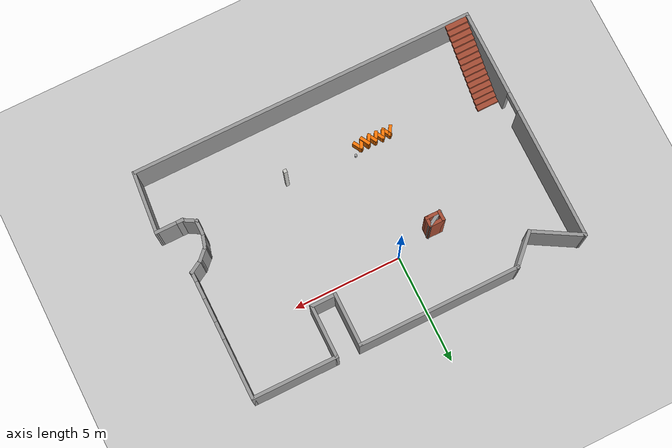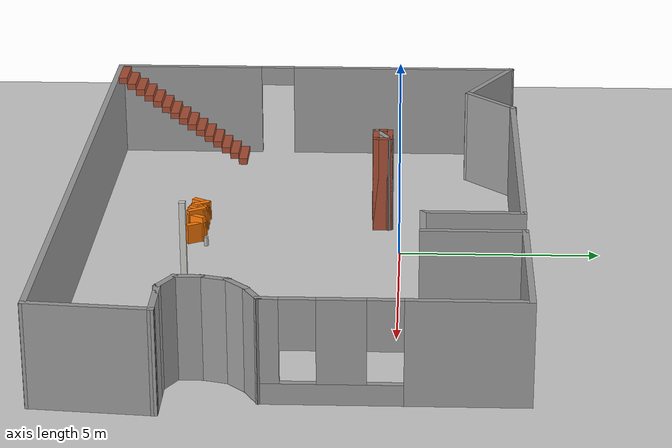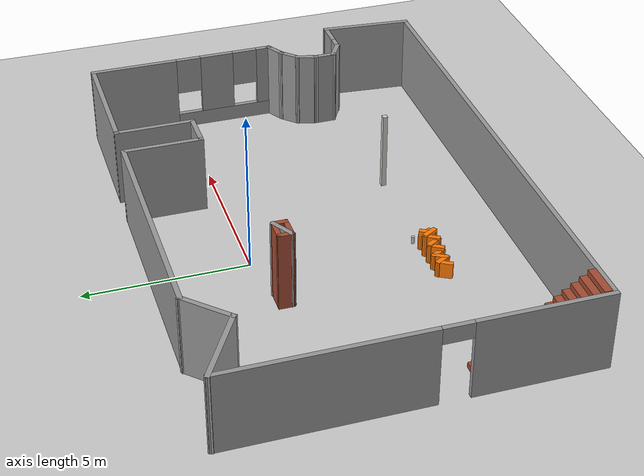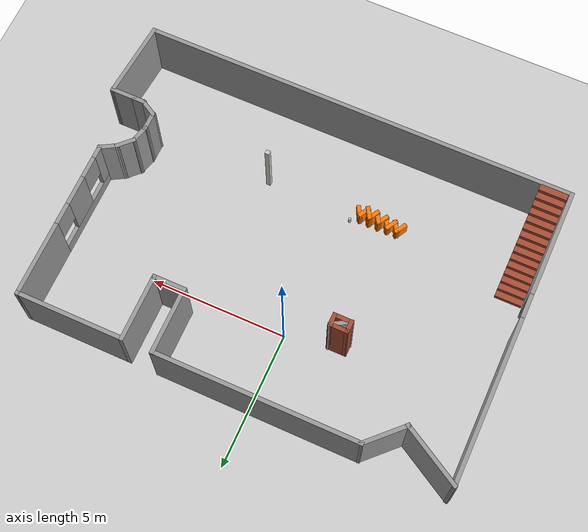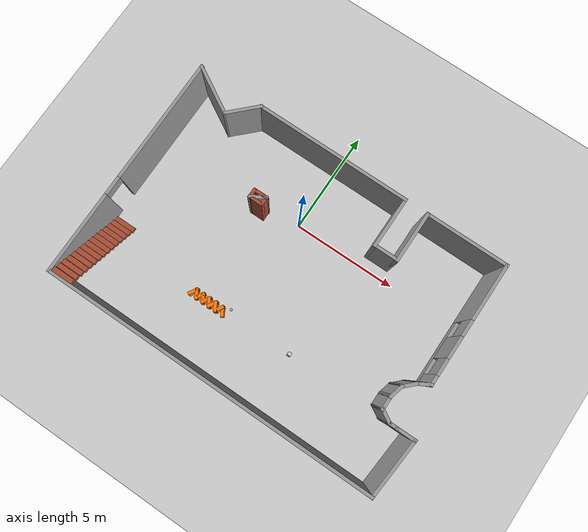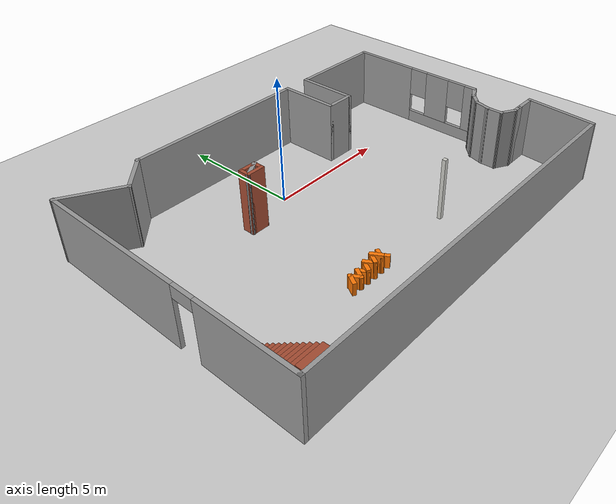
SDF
<sdf version="1.6">
 <world name="default">
  <model name="ground_plane">
   <static>1</static>
   <link name="link">
    <collision name="collision">
     <geometry><plane><normal>0 0 1</normal><size>100 100</size></plane></geometry>
     <surface><friction><ode><mu>100</mu><mu2>50</mu2></ode></friction></surface>
    </collision>
    <visual name="visual">
     <cast_shadows>0</cast_shadows>
     <geometry><plane><normal>0 0 1</normal><size>100 100</size></plane></geometry>
     <material>
      <script><uri>file://media/materials/scripts/gazebo.material</uri><name>Gazebo/Grey</name></script>
     </material>
    </visual>
   </link>
  </model>
  <model name="industria_basica">
   <pose>0.834406 -2.44932 0 0 -0 0</pose>
   <link name="Stairs_0">
    <visual name="Stairs_0_Visual_0">
     <pose>-7.4348 -1.99326 0.083333 0 -0 0</pose>
     <geometry><box><size>1 0.233333 0.166667</size></box></geometry>
     <material>
      <script><uri>file://media/materials/scripts/gazebo.material</uri><name>Gazebo/Bricks</name></script>
      <ambient>1 1 1 1</ambient>
     </material>
    </visual>
    <collision name="Stairs_0_Collision_0">
     <geometry><box><size>1 0.233333 0.166667</size></box></geometry>
     <pose>-7.4348 -1.99326 0.083333 0 -0 0</pose>
    </collision>
    <visual name="Stairs_0_Visual_1">
     <pose>-7.4348 -2.22659 0.25 0 -0 0</pose>
     <geometry><box><size>1 0.233333 0.166667</size></box></geometry>
     <material>
      <script><uri>file://media/materials/scripts/gazebo.material</uri><name>Gazebo/Bricks</name></script>
      <ambient>1 1 1 1</ambient>
     </material>
    </visual>
    <collision name="Stairs_0_Collision_1">
     <geometry><box><size>1 0.233333 0.166667</size></box></geometry>
     <pose>-7.4348 -2.22659 0.25 0 -0 0</pose>
    </collision>
    <visual name="Stairs_0_Visual_2">
     <pose>-7.4348 -2.45992 0.416667 0 -0 0</pose>
     <geometry><box><size>1 0.233333 0.166667</size></box></geometry>
     <material>
      <script><uri>file://media/materials/scripts/gazebo.material</uri><name>Gazebo/Bricks</name></script>
      <ambient>1 1 1 1</ambient>
     </material>
    </visual>
    <collision name="Stairs_0_Collision_2">
     <geometry><box><size>1 0.233333 0.166667</size></box></geometry>
     <pose>-7.4348 -2.45992 0.416667 0 -0 0</pose>
    </collision>
    <visual name="Stairs_0_Visual_3">
     <pose>-7.4348 -2.69326 0.583333 0 -0 0</pose>
     <geometry><box><size>1 0.233333 0.166667</size></box></geometry>
     <material>
      <script><uri>file://media/materials/scripts/gazebo.material</uri><name>Gazebo/Bricks</name></script>
      <ambient>1 1 1 1</ambient>
     </material>
    </visual>
    <collision name="Stairs_0_Collision_3">
     <geometry><box><size>1 0.233333 0.166667</size></box></geometry>
     <pose>-7.4348 -2.69326 0.583333 0 -0 0</pose>
    </collision>
    <visual name="Stairs_0_Visual_4">
     <pose>-7.4348 -2.92659 0.75 0 -0 0</pose>
     <geometry><box><size>1 0.233333 0.166667</size></box></geometry>
     <material>
      <script><uri>file://media/materials/scripts/gazebo.material</uri><name>Gazebo/Bricks</name></script>
      <ambient>1 1 1 1</ambient>
     </material>
    </visual>
    <collision name="Stairs_0_Collision_4">
     <geometry><box><size>1 0.233333 0.166667</size></box></geometry>
     <pose>-7.4348 -2.92659 0.75 0 -0 0</pose>
    </collision>
    <visual name="Stairs_0_Visual_5">
     <pose>-7.4348 -3.15992 0.916667 0 -0 0</pose>
     <geometry><box><size>1 0.233333 0.166667</size></box></geometry>
     <material>
      <script><uri>file://media/materials/scripts/gazebo.material</uri><name>Gazebo/Bricks</name></script>
      <ambient>1 1 1 1</ambient>
     </material>
    </visual>
    <collision name="Stairs_0_Collision_5">
     <geometry><box><size>1 0.233333 0.166667</size></box></geometry>
     <pose>-7.4348 -3.15992 0.916667 0 -0 0</pose>
    </collision>
    <visual name="Stairs_0_Visual_6">
     <pose>-7.4348 -3.39326 1.08333 0 -0 0</pose>
     <geometry><box><size>1 0.233333 0.166667</size></box></geometry>
     <material>
      <script><uri>file://media/materials/scripts/gazebo.material</uri><name>Gazebo/Bricks</name></script>
      <ambient>1 1 1 1</ambient>
     </material>
    </visual>
    <collision name="Stairs_0_Collision_6">
     <geometry><box><size>1 0.233333 0.166667</size></box></geometry>
     <pose>-7.4348 -3.39326 1.08333 0 -0 0</pose>
    </collision>
    <visual name="Stairs_0_Visual_7">
     <pose>-7.4348 -3.62659 1.25 0 -0 0</pose>
     <geometry><box><size>1 0.233333 0.166667</size></box></geometry>
     <material>
      <script><uri>file://media/materials/scripts/gazebo.material</uri><name>Gazebo/Bricks</name></script>
      <ambient>1 1 1 1</ambient>
     </material>
    </visual>
    <collision name="Stairs_0_Collision_7">
     <geometry><box><size>1 0.233333 0.166667</size></box></geometry>
     <pose>-7.4348 -3.62659 1.25 0 -0 0</pose>
    </collision>
    <visual name="Stairs_0_Visual_8">
     <pose>-7.4348 -3.85992 1.41667 0 -0 0</pose>
     <geometry><box><size>1 0.233333 0.166667</size></box></geometry>
     <material>
      <script><uri>file://media/materials/scripts/gazebo.material</uri><name>Gazebo/Bricks</name></script>
      <ambient>1 1 1 1</ambient>
     </material>
    </visual>
    <collision name="Stairs_0_Collision_8">
     <geometry><box><size>1 0.233333 0.166667</size></box></geometry>
     <pose>-7.4348 -3.85992 1.41667 0 -0 0</pose>
    </collision>
    <visual name="Stairs_0_Visual_9">
     <pose>-7.4348 -4.09326 1.58333 0 -0 0</pose>
     <geometry><box><size>1 0.233333 0.166667</size></box></geometry>
     <material>
      <script><uri>file://media/materials/scripts/gazebo.material</uri><name>Gazebo/Bricks</name></script>
      <ambient>1 1 1 1</ambient>
     </material>
    </visual>
    <collision name="Stairs_0_Collision_9">
     <geometry><box><size>1 0.233333 0.166667</size></box></geometry>
     <pose>-7.4348 -4.09326 1.58333 0 -0 0</pose>
    </collision>
    <visual name="Stairs_0_Visual_10">
     <pose>-7.4348 -4.32659 1.75 0 -0 0</pose>
     <geometry><box><size>1 0.233333 0.166667</size></box></geometry>
     <material>
      <script><uri>file://media/materials/scripts/gazebo.material</uri><name>Gazebo/Bricks</name></script>
      <ambient>1 1 1 1</ambient>
     </material>
    </visual>
    <collision name="Stairs_0_Collision_10">
     <geometry><box><size>1 0.233333 0.166667</size></box></geometry>
     <pose>-7.4348 -4.32659 1.75 0 -0 0</pose>
    </collision>
    <visual name="Stairs_0_Visual_11">
     <pose>-7.4348 -4.55992 1.91667 0 -0 0</pose>
     <geometry><box><size>1 0.233333 0.166667</size></box></geometry>
     <material>
      <script><uri>file://media/materials/scripts/gazebo.material</uri><name>Gazebo/Bricks</name></script>
      <ambient>1 1 1 1</ambient>
     </material>
    </visual>
    <collision name="Stairs_0_Collision_11">
     <geometry><box><size>1 0.233333 0.166667</size></box></geometry>
     <pose>-7.4348 -4.55992 1.91667 0 -0 0</pose>
    </collision>
    <visual name="Stairs_0_Visual_12">
     <pose>-7.4348 -4.79326 2.08333 0 -0 0</pose>
     <geometry><box><size>1 0.233333 0.166667</size></box></geometry>
     <material>
      <script><uri>file://media/materials/scripts/gazebo.material</uri><name>Gazebo/Bricks</name></script>
      <ambient>1 1 1 1</ambient>
     </material>
    </visual>
    <collision name="Stairs_0_Collision_12">
     <geometry><box><size>1 0.233333 0.166667</size></box></geometry>
     <pose>-7.4348 -4.79326 2.08333 0 -0 0</pose>
    </collision>
    <visual name="Stairs_0_Visual_13">
     <pose>-7.4348 -5.02659 2.25 0 -0 0</pose>
     <geometry><box><size>1 0.233333 0.166667</size></box></geometry>
     <material>
      <script><uri>file://media/materials/scripts/gazebo.material</uri><name>Gazebo/Bricks</name></script>
      <ambient>1 1 1 1</ambient>
     </material>
    </visual>
    <collision name="Stairs_0_Collision_13">
     <geometry><box><size>1 0.233333 0.166667</size></box></geometry>
     <pose>-7.4348 -5.02659 2.25 0 -0 0</pose>
    </collision>
    <visual name="Stairs_0_Visual_14">
     <pose>-7.4348 -5.25992 2.41667 0 -0 0</pose>
     <geometry><box><size>1 0.233333 0.166667</size></box></geometry>
     <material>
      <script><uri>file://media/materials/scripts/gazebo.material</uri><name>Gazebo/Bricks</name></script>
      <ambient>1 1 1 1</ambient>
     </material>
    </visual>
    <collision name="Stairs_0_Collision_14">
     <geometry><box><size>1 0.233333 0.166667</size></box></geometry>
     <pose>-7.4348 -5.25992 2.41667 0 -0 0</pose>
    </collision>
   </link>
   <link name="Wall_10">
    <collision name="Wall_10_Collision">
     <geometry><box><size>7.5 0.15 2.5</size></box></geometry>
     <pose>0 0 1.25 0 -0 0</pose>
    </collision>
    <visual name="Wall_10_Visual">
     <pose>0 0 1.25 0 -0 0</pose>
     <geometry><box><size>7.5 0.15 2.5</size></box></geometry>
     <material>
      <script><uri>file://media/materials/scripts/gazebo.material</uri><name>Gazebo/Grey</name></script>
      <ambient>1 1 1 1</ambient>
     </material>
    </visual>
    <pose>-1.19131 5.37072 0 0 -0 0</pose>
   </link>
   <link name="Wall_11">
    <collision name="Wall_11_Collision">
     <geometry><box><size>2.5 0.15 2.5</size></box></geometry>
     <pose>0 0 1.25 0 -0 0</pose>
    </collision>
    <visual name="Wall_11_Visual">
     <pose>0 0 1.25 0 -0 0</pose>
     <geometry><box><size>2.5 0.15 2.5</size></box></geometry>
     <material>
      <script><uri>file://media/materials/scripts/gazebo.material</uri><name>Gazebo/Grey</name></script>
      <ambient>1 1 1 1</ambient>
     </material>
    </visual>
    <pose>2.48369 4.19572 0 0 0 -1.5708</pose>
   </link>
   <link name="Wall_12">
    <collision name="Wall_12_Collision">
     <geometry><box><size>1.25 0.15 2.5</size></box></geometry>
     <pose>0 0 1.25 0 -0 0</pose>
    </collision>
    <visual name="Wall_12_Visual">
     <pose>0 0 1.25 0 -0 0</pose>
     <geometry><box><size>1.25 0.15 2.5</size></box></geometry>
     <material>
      <script><uri>file://media/materials/scripts/gazebo.material</uri><name>Gazebo/Grey</name></script>
      <ambient>1 1 1 1</ambient>
     </material>
    </visual>
    <pose>3.03369 3.02072 0 0 -0 0</pose>
   </link>
   <link name="Wall_13">
    <collision name="Wall_13_Collision">
     <geometry><box><size>2.5 0.15 2.5</size></box></geometry>
     <pose>0 0 1.25 0 -0 0</pose>
    </collision>
    <visual name="Wall_13_Visual">
     <pose>0 0 1.25 0 -0 0</pose>
     <geometry><box><size>2.5 0.15 2.5</size></box></geometry>
     <material>
      <script><uri>file://media/materials/scripts/gazebo.material</uri><name>Gazebo/Grey</name></script>
      <ambient>1 1 1 1</ambient>
     </material>
    </visual>
    <pose>3.58369 4.19572 0 0 -0 1.5708</pose>
   </link>
   <link name="Wall_14">
    <collision name="Wall_14_Collision">
     <geometry><box><size>4 0.15 2.5</size></box></geometry>
     <pose>0 0 1.25 0 -0 0</pose>
    </collision>
    <visual name="Wall_14_Visual">
     <pose>0 0 1.25 0 -0 0</pose>
     <geometry><box><size>4 0.15 2.5</size></box></geometry>
     <material>
      <script><uri>file://media/materials/scripts/gazebo.material</uri><name>Gazebo/Grey</name></script>
      <ambient>1 1 1 1</ambient>
     </material>
    </visual>
    <pose>5.50869 5.37072 0 0 -0 0</pose>
   </link>
   <link name="Wall_15">
    <pose>7.43369 2.44572 0 0 0 -1.5708</pose>
    <visual name="Wall_15_Visual_0">
     <pose>-1.60274 0 1.25 0 -0 0</pose>
     <geometry><box><size>2.79452 0.15 2.5</size></box></geometry>
     <material>
      <script><uri>file://media/materials/scripts/gazebo.material</uri><name>Gazebo/Grey</name></script>
      <ambient>1 1 1 1</ambient>
     </material>
    </visual>
    <collision name="Wall_15_Collision_0">
     <geometry><box><size>2.79452 0.15 2.5</size></box></geometry>
     <pose>-1.60274 0 1.25 0 -0 0</pose>
    </collision>
    <visual name="Wall_15_Visual_1">
     <pose>1.39726 0 0.25 0 -0 0</pose>
     <geometry><box><size>3.20548 0.15 0.5</size></box></geometry>
     <material>
      <script><uri>file://media/materials/scripts/gazebo.material</uri><name>Gazebo/Grey</name></script>
      <ambient>1 1 1 1</ambient>
     </material>
    </visual>
    <collision name="Wall_15_Collision_1">
     <geometry><box><size>3.20548 0.15 0.5</size></box></geometry>
     <pose>1.39726 0 0.25 0 -0 0</pose>
    </collision>
    <visual name="Wall_15_Visual_2">
     <pose>1.13916 0 1.5 0 -0 0</pose>
     <geometry><box><size>1.08927 0.15 2</size></box></geometry>
     <material>
      <script><uri>file://media/materials/scripts/gazebo.material</uri><name>Gazebo/Grey</name></script>
      <ambient>1 1 1 1</ambient>
     </material>
    </visual>
    <collision name="Wall_15_Collision_2">
     <geometry><box><size>1.08927 0.15 2</size></box></geometry>
     <pose>1.13916 0 1.5 0 -0 0</pose>
    </collision>
    <visual name="Wall_15_Visual_3">
     <pose>2.7419 0 1.5 0 -0 0</pose>
     <geometry><box><size>0.516207 0.15 2</size></box></geometry>
     <material>
      <script><uri>file://media/materials/scripts/gazebo.material</uri><name>Gazebo/Grey</name></script>
      <ambient>1 1 1 1</ambient>
     </material>
    </visual>
    <collision name="Wall_15_Collision_3">
     <geometry><box><size>0.516207 0.15 2</size></box></geometry>
     <pose>2.7419 0 1.5 0 -0 0</pose>
    </collision>
    <visual name="Wall_15_Visual_4">
     <pose>0.194521 0 1.9 0 -0 0</pose>
     <geometry><box><size>0.8 0.15 1.2</size></box></geometry>
     <material>
      <script><uri>file://media/materials/scripts/gazebo.material</uri><name>Gazebo/Grey</name></script>
      <ambient>1 1 1 1</ambient>
     </material>
    </visual>
    <collision name="Wall_15_Collision_4">
     <geometry><box><size>0.8 0.15 1.2</size></box></geometry>
     <pose>0.194521 0 1.9 0 -0 0</pose>
    </collision>
    <visual name="Wall_15_Visual_5">
     <pose>2.08379 0 1.9 0 -0 0</pose>
     <geometry><box><size>0.8 0.15 1.2</size></box></geometry>
     <material>
      <script><uri>file://media/materials/scripts/gazebo.material</uri><name>Gazebo/Grey</name></script>
      <ambient>1 1 1 1</ambient>
     </material>
    </visual>
    <collision name="Wall_15_Collision_5">
     <geometry><box><size>0.8 0.15 1.2</size></box></geometry>
     <pose>2.08379 0 1.9 0 -0 0</pose>
    </collision>
   </link>
   <link name="Wall_16">
    <collision name="Wall_16_Collision">
     <geometry><box><size>0.75 0.15 2.5</size></box></geometry>
     <pose>0 0 1.25 0 -0 0</pose>
    </collision>
    <visual name="Wall_16_Visual">
     <pose>0 0 1.25 0 -0 0</pose>
     <geometry><box><size>0.75 0.15 2.5</size></box></geometry>
     <material>
      <script><uri>file://media/materials/scripts/gazebo.material</uri><name>Gazebo/Grey</name></script>
      <ambient>1 1 1 1</ambient>
     </material>
    </visual>
    <pose>7.17388 -0.629277 0 0 0 -2.61799</pose>
   </link>
   <link name="Wall_17">
    <collision name="Wall_17_Collision">
     <geometry><box><size>0.75 0.15 2.5</size></box></geometry>
     <pose>0 0 1.25 0 -0 0</pose>
    </collision>
    <visual name="Wall_17_Visual">
     <pose>0 0 1.25 0 -0 0</pose>
     <geometry><box><size>0.75 0.15 2.5</size></box></geometry>
     <material>
      <script><uri>file://media/materials/scripts/gazebo.material</uri><name>Gazebo/Grey</name></script>
      <ambient>1 1 1 1</ambient>
     </material>
    </visual>
    <pose>6.70194 -0.991409 0 0 0 -2.35619</pose>
   </link>
   <link name="Wall_18">
    <collision name="Wall_18_Collision">
     <geometry><box><size>0.75 0.15 2.5</size></box></geometry>
     <pose>0 0 1.25 0 -0 0</pose>
    </collision>
    <visual name="Wall_18_Visual">
     <pose>0 0 1.25 0 -0 0</pose>
     <geometry><box><size>0.75 0.15 2.5</size></box></geometry>
     <material>
      <script><uri>file://media/materials/scripts/gazebo.material</uri><name>Gazebo/Grey</name></script>
      <ambient>1 1 1 1</ambient>
     </material>
    </visual>
    <pose>6.41217 -1.49332 0 0 0 -1.8326</pose>
   </link>
   <link name="Wall_19">
    <collision name="Wall_19_Collision">
     <geometry><box><size>0.75 0.15 2.5</size></box></geometry>
     <pose>0 0 1.25 0 -0 0</pose>
    </collision>
    <visual name="Wall_19_Visual">
     <pose>0 0 1.25 0 -0 0</pose>
     <geometry><box><size>0.75 0.15 2.5</size></box></geometry>
     <material>
      <script><uri>file://media/materials/scripts/gazebo.material</uri><name>Gazebo/Grey</name></script>
      <ambient>1 1 1 1</ambient>
     </material>
    </visual>
    <pose>6.33452 -2.0831 0 0 0 -1.5708</pose>
   </link>
   <link name="Wall_20">
    <collision name="Wall_20_Collision">
     <geometry><box><size>0.75 0.15 2.5</size></box></geometry>
     <pose>0 0 1.25 0 -0 0</pose>
    </collision>
    <visual name="Wall_20_Visual">
     <pose>0 0 1.25 0 -0 0</pose>
     <geometry><box><size>0.75 0.15 2.5</size></box></geometry>
     <material>
      <script><uri>file://media/materials/scripts/gazebo.material</uri><name>Gazebo/Grey</name></script>
      <ambient>1 1 1 1</ambient>
     </material>
    </visual>
    <pose>6.59433 -2.5331 0 0 0 -0.523599</pose>
   </link>
   <link name="Wall_21">
    <collision name="Wall_21_Collision">
     <geometry><box><size>0.5 0.15 2.5</size></box></geometry>
     <pose>0 0 1.25 0 -0 0</pose>
    </collision>
    <visual name="Wall_21_Visual">
     <pose>0 0 1.25 0 -0 0</pose>
     <geometry><box><size>0.5 0.15 2.5</size></box></geometry>
     <material>
      <script><uri>file://media/materials/scripts/gazebo.material</uri><name>Gazebo/Grey</name></script>
      <ambient>1 1 1 1</ambient>
     </material>
    </visual>
    <pose>7.02914 -2.6831 0 0 -0 0</pose>
   </link>
   <link name="Wall_22">
    <collision name="Wall_22_Collision">
     <geometry><box><size>1 0.15 2.5</size></box></geometry>
     <pose>0 0 1.25 0 -0 0</pose>
    </collision>
    <visual name="Wall_22_Visual">
     <pose>0 0 1.25 0 -0 0</pose>
     <geometry><box><size>1 0.15 2.5</size></box></geometry>
     <material>
      <script><uri>file://media/materials/scripts/gazebo.material</uri><name>Gazebo/Grey</name></script>
      <ambient>1 1 1 1</ambient>
     </material>
    </visual>
    <pose>7.62913 -2.6831 0 0 -0 0</pose>
   </link>
   <link name="Wall_23">
    <collision name="Wall_23_Collision">
     <geometry><box><size>2.91273 0.15 2.5</size></box></geometry>
     <pose>0 0 1.25 0 -0 0</pose>
    </collision>
    <visual name="Wall_23_Visual">
     <pose>0 0 1.25 0 -0 0</pose>
     <geometry><box><size>2.91273 0.15 2.5</size></box></geometry>
     <material>
      <script><uri>file://media/materials/scripts/gazebo.material</uri><name>Gazebo/Grey</name></script>
      <ambient>1 1 1 1</ambient>
     </material>
    </visual>
    <pose>7.93565 -4.05937 0 0 0 -1.65668</pose>
   </link>
   <link name="Wall_4">
    <pose>-8.03284 -0.010648 0 0 0 -1.5708</pose>
    <visual name="Wall_4_Visual_0">
     <pose>-2.45105 0 1.25 0 -0 0</pose>
     <geometry><box><size>6.09789 0.15 2.5</size></box></geometry>
     <material>
      <script><uri>file://media/materials/scripts/gazebo.material</uri><name>Gazebo/Grey</name></script>
      <ambient>1 1 1 1</ambient>
     </material>
    </visual>
    <collision name="Wall_4_Collision_0">
     <geometry><box><size>6.09789 0.15 2.5</size></box></geometry>
     <pose>-2.45105 0 1.25 0 -0 0</pose>
    </collision>
    <visual name="Wall_4_Visual_1">
     <pose>3.49895 0 1.25 0 -0 0</pose>
     <geometry><box><size>4.00211 0.15 2.5</size></box></geometry>
     <material>
      <script><uri>file://media/materials/scripts/gazebo.material</uri><name>Gazebo/Grey</name></script>
      <ambient>1 1 1 1</ambient>
     </material>
    </visual>
    <collision name="Wall_4_Collision_1">
     <geometry><box><size>4.00211 0.15 2.5</size></box></geometry>
     <pose>3.49895 0 1.25 0 -0 0</pose>
    </collision>
    <visual name="Wall_4_Visual_2">
     <pose>1.04789 0 2.25 0 -0 0</pose>
     <geometry><box><size>0.9 0.15 0.5</size></box></geometry>
     <material>
      <script><uri>file://media/materials/scripts/gazebo.material</uri><name>Gazebo/Grey</name></script>
      <ambient>1 1 1 1</ambient>
     </material>
    </visual>
    <collision name="Wall_4_Collision_2">
     <geometry><box><size>0.9 0.15 0.5</size></box></geometry>
     <pose>1.04789 0 2.25 0 -0 0</pose>
    </collision>
   </link>
   <link name="Wall_5">
    <collision name="Wall_5_Collision">
     <geometry><box><size>16 0.15 2.5</size></box></geometry>
     <pose>0 0 1.25 0 -0 0</pose>
    </collision>
    <visual name="Wall_5_Visual">
     <pose>0 0 1.25 0 -0 0</pose>
     <geometry><box><size>16 0.15 2.5</size></box></geometry>
     <material>
      <script><uri>file://media/materials/scripts/gazebo.material</uri><name>Gazebo/Grey</name></script>
      <ambient>1 1 1 1</ambient>
     </material>
    </visual>
    <pose>-0.10784 -5.43565 0 0 -0 0</pose>
   </link>
   <link name="Wall_8">
    <collision name="Wall_8_Collision">
     <geometry><box><size>2.5 0.15 2.5</size></box></geometry>
     <pose>0 0 1.25 0 -0 0</pose>
    </collision>
    <visual name="Wall_8_Visual">
     <pose>0 0 1.25 0 -0 0</pose>
     <geometry><box><size>2.5 0.15 2.5</size></box></geometry>
     <material>
      <script><uri>file://media/materials/scripts/gazebo.material</uri><name>Gazebo/Grey</name></script>
      <ambient>1 1 1 1</ambient>
     </material>
    </visual>
    <pose>-7.01526 4.82685 0 0 0 -0.523599</pose>
   </link>
   <link name="Wall_9">
    <collision name="Wall_9_Collision">
     <geometry><box><size>1.75 0.15 2.5</size></box></geometry>
     <pose>0 0 1.25 0 -0 0</pose>
    </collision>
    <visual name="Wall_9_Visual">
     <pose>0 0 1.25 0 -0 0</pose>
     <geometry><box><size>1.75 0.15 2.5</size></box></geometry>
     <material>
      <script><uri>file://media/materials/scripts/gazebo.material</uri><name>Gazebo/Grey</name></script>
      <ambient>1 1 1 1</ambient>
     </material>
    </visual>
    <pose>-5.43199 4.80504 0 0 -0 0.785398</pose>
   </link>
   <static>1</static>
  </model>
  <model name="industria_basica2">
   <pose>0.305179 -2.81957 0 0 -0 0</pose>
   <link name="Wall_1">
    <collision name="Wall_1_Collision">
     <geometry><box><size>0.16 0.15 2.5</size></box></geometry>
     <pose>0 0 1.25 0 -0 0</pose>
    </collision>
    <visual name="Wall_1_Visual">
     <pose>0 0 1.25 0 -0 0</pose>
     <geometry><box><size>0.16 0.15 2.5</size></box></geometry>
     <material>
      <script><uri>file://media/materials/scripts/gazebo.material</uri><name>Gazebo/CeilingTiled</name></script>
      <ambient>1 1 1 1</ambient>
     </material>
    </visual>
    <pose>2.58924 -2.29315 0 0 -0 0</pose>
   </link>
   <link name="Wall_10">
    <collision name="Wall_10_Collision">
     <geometry><box><size>0.844622 0.15 2.5</size></box></geometry>
     <pose>0 0 1.25 0 -0 0</pose>
    </collision>
    <visual name="Wall_10_Visual">
     <pose>0 0 1.25 0 -0 0</pose>
     <geometry><box><size>0.844622 0.15 2.5</size></box></geometry>
     <material>
      <script><uri>file://media/materials/scripts/gazebo.material</uri><name>Gazebo/Grey</name></script>
      <ambient>1 1 1 1</ambient>
     </material>
    </visual>
    <pose>-2.16698 2.35707 0 0 0 -2.61352</pose>
   </link>
   <link name="Wall_21">
    <collision name="Wall_21_Collision">
     <geometry><box><size>0.5 0.15 0.5</size></box></geometry>
     <pose>0 0 0.25 0 -0 0</pose>
    </collision>
    <visual name="Wall_21_Visual">
     <pose>0 0 0.25 0 -0 0</pose>
     <geometry><box><size>0.5 0.15 0.5</size></box></geometry>
     <material>
      <script><uri>file://media/materials/scripts/gazebo.material</uri><name>Gazebo/Grey</name></script>
      <ambient>0.996078 0.47451 0.0196078 1</ambient>
     </material>
    </visual>
    <pose>-2.47926 -2.38065 0 0 -0 1.04704</pose>
   </link>
   <link name="Wall_22">
    <collision name="Wall_22_Collision">
     <geometry><box><size>0.5 0.15 0.5</size></box></geometry>
     <pose>0 0 0.25 0 -0 0</pose>
    </collision>
    <visual name="Wall_22_Visual">
     <pose>0 0 0.25 0 -0 0</pose>
     <geometry><box><size>0.5 0.15 0.5</size></box></geometry>
     <material>
      <script><uri>file://media/materials/scripts/gazebo.material</uri><name>Gazebo/Grey</name></script>
      <ambient>0.996078 0.47451 0.0196078 1</ambient>
     </material>
    </visual>
    <pose>-2.30426 -2.38065 0 0 0 -1.04704</pose>
   </link>
   <link name="Wall_23">
    <collision name="Wall_23_Collision">
     <geometry><box><size>0.5 0.15 0.5</size></box></geometry>
     <pose>0 0 0.25 0 -0 0</pose>
    </collision>
    <visual name="Wall_23_Visual">
     <pose>0 0 0.25 0 -0 0</pose>
     <geometry><box><size>0.5 0.15 0.5</size></box></geometry>
     <material>
      <script><uri>file://media/materials/scripts/gazebo.material</uri><name>Gazebo/Grey</name></script>
      <ambient>0.996078 0.47451 0.0196078 1</ambient>
     </material>
    </visual>
    <pose>-2.12926 -2.38065 0 0 -0 1.04704</pose>
   </link>
   <link name="Wall_24">
    <collision name="Wall_24_Collision">
     <geometry><box><size>0.5 0.15 0.5</size></box></geometry>
     <pose>0 0 0.25 0 -0 0</pose>
    </collision>
    <visual name="Wall_24_Visual">
     <pose>0 0 0.25 0 -0 0</pose>
     <geometry><box><size>0.5 0.15 0.5</size></box></geometry>
     <material>
      <script><uri>file://media/materials/scripts/gazebo.material</uri><name>Gazebo/Grey</name></script>
      <ambient>0.996078 0.47451 0.0196078 1</ambient>
     </material>
    </visual>
    <pose>-1.95426 -2.38065 0 0 0 -1.04704</pose>
   </link>
   <link name="Wall_25">
    <collision name="Wall_25_Collision">
     <geometry><box><size>0.5 0.15 0.6</size></box></geometry>
     <pose>0 0 0.3 0 -0 0</pose>
    </collision>
    <visual name="Wall_25_Visual">
     <pose>0 0 0.3 0 -0 0</pose>
     <geometry><box><size>0.5 0.15 0.6</size></box></geometry>
     <material>
      <script><uri>file://media/materials/scripts/gazebo.material</uri><name>Gazebo/Grey</name></script>
      <ambient>0.996078 0.47451 0.0196078 1</ambient>
     </material>
    </visual>
    <pose>-1.77926 -2.38065 0 0 -0 1.04704</pose>
   </link>
   <link name="Wall_26">
    <collision name="Wall_26_Collision">
     <geometry><box><size>0.5 0.15 0.65</size></box></geometry>
     <pose>0 0 0.325 0 -0 0</pose>
    </collision>
    <visual name="Wall_26_Visual">
     <pose>0 0 0.325 0 -0 0</pose>
     <geometry><box><size>0.5 0.15 0.65</size></box></geometry>
     <material>
      <script><uri>file://media/materials/scripts/gazebo.material</uri><name>Gazebo/Grey</name></script>
      <ambient>0.996078 0.47451 0.0196078 1</ambient>
     </material>
    </visual>
    <pose>-1.60426 -2.38065 0 0 0 -1.04704</pose>
   </link>
   <link name="Wall_27">
    <collision name="Wall_27_Collision">
     <geometry><box><size>0.5 0.15 0.7</size></box></geometry>
     <pose>0 0 0.35 0 -0 0</pose>
    </collision>
    <visual name="Wall_27_Visual">
     <pose>0 0 0.35 0 -0 0</pose>
     <geometry><box><size>0.5 0.15 0.7</size></box></geometry>
     <material>
      <script><uri>file://media/materials/scripts/gazebo.material</uri><name>Gazebo/Grey</name></script>
      <ambient>0.996078 0.47451 0.0196078 1</ambient>
     </material>
    </visual>
    <pose>-1.42926 -2.38065 0 0 -0 1.04704</pose>
   </link>
   <link name="Wall_28">
    <collision name="Wall_28_Collision">
     <geometry><box><size>0.5 0.15 0.75</size></box></geometry>
     <pose>0 0 0.375 0 -0 0</pose>
    </collision>
    <visual name="Wall_28_Visual">
     <pose>0 0 0.375 0 -0 0</pose>
     <geometry><box><size>0.5 0.15 0.75</size></box></geometry>
     <material>
      <script><uri>file://media/materials/scripts/gazebo.material</uri><name>Gazebo/Grey</name></script>
      <ambient>0.996078 0.47451 0.0196078 1</ambient>
     </material>
    </visual>
    <pose>-1.25426 -2.38065 0 0 0 -1.04704</pose>
   </link>
   <link name="Wall_29">
    <collision name="Wall_29_Collision">
     <geometry><box><size>0.5 0.15 0.65</size></box></geometry>
     <pose>0 0 0.325 0 -0 0</pose>
    </collision>
    <visual name="Wall_29_Visual">
     <pose>0 0 0.325 0 -0 0</pose>
     <geometry><box><size>0.5 0.15 0.65</size></box></geometry>
     <material>
      <script><uri>file://media/materials/scripts/gazebo.material</uri><name>Gazebo/Grey</name></script>
      <ambient>0.996078 0.47451 0.0196078 1</ambient>
     </material>
    </visual>
    <pose>-1.07926 -2.38065 0 0 -0 1.04704</pose>
   </link>
   <link name="Wall_30">
    <collision name="Wall_30_Collision">
     <geometry><box><size>0.5 0.15 0.5</size></box></geometry>
     <pose>0 0 0.25 0 -0 0</pose>
    </collision>
    <visual name="Wall_30_Visual">
     <pose>0 0 0.25 0 -0 0</pose>
     <geometry><box><size>0.5 0.15 0.5</size></box></geometry>
     <material>
      <script><uri>file://media/materials/scripts/gazebo.material</uri><name>Gazebo/Grey</name></script>
      <ambient>0.996078 0.47451 0.0196078 1</ambient>
     </material>
    </visual>
    <pose>-0.90426 -2.38065 0 0 0 -1.04704</pose>
   </link>
   <link name="Wall_6">
    <collision name="Wall_6_Collision">
     <geometry><box><size>0.5 0.15 2.5</size></box></geometry>
     <pose>0 0 1.25 0 -0 0</pose>
    </collision>
    <visual name="Wall_6_Visual">
     <pose>0 0 1.25 0 -0 0</pose>
     <geometry><box><size>0.5 0.15 2.5</size></box></geometry>
     <material>
      <script><uri>file://media/materials/scripts/gazebo.material</uri><name>Gazebo/Bricks</name></script>
      <ambient>1 1 1 1</ambient>
     </material>
    </visual>
    <pose>-1.86698 2.35707 0 0 0 -1.5708</pose>
   </link>
   <link name="Wall_7">
    <collision name="Wall_7_Collision">
     <geometry><box><size>0.75 0.15 2.5</size></box></geometry>
     <pose>0 0 1.25 0 -0 0</pose>
    </collision>
    <visual name="Wall_7_Visual">
     <pose>0 0 1.25 0 -0 0</pose>
     <geometry><box><size>0.75 0.15 2.5</size></box></geometry>
     <material>
      <script><uri>file://media/materials/scripts/gazebo.material</uri><name>Gazebo/Bricks</name></script>
      <ambient>1 1 1 1</ambient>
     </material>
    </visual>
    <pose>-2.16698 2.18207 0 0 -0 3.14159</pose>
   </link>
   <link name="Wall_8">
    <collision name="Wall_8_Collision">
     <geometry><box><size>0.5 0.15 2.5</size></box></geometry>
     <pose>0 0 1.25 0 -0 0</pose>
    </collision>
    <visual name="Wall_8_Visual">
     <pose>0 0 1.25 0 -0 0</pose>
     <geometry><box><size>0.5 0.15 2.5</size></box></geometry>
     <material>
      <script><uri>file://media/materials/scripts/gazebo.material</uri><name>Gazebo/Bricks</name></script>
      <ambient>1 1 1 1</ambient>
     </material>
    </visual>
    <pose>-2.46698 2.35707 0 0 -0 1.5708</pose>
   </link>
   <link name="Wall_9">
    <collision name="Wall_9_Collision">
     <geometry><box><size>0.75 0.15 2.5</size></box></geometry>
     <pose>0 0 1.25 0 -0 0</pose>
    </collision>
    <visual name="Wall_9_Visual">
     <pose>0 0 1.25 0 -0 0</pose>
     <geometry><box><size>0.75 0.15 2.5</size></box></geometry>
     <material>
      <script><uri>file://media/materials/scripts/gazebo.material</uri><name>Gazebo/Bricks</name></script>
      <ambient>1 1 1 1</ambient>
     </material>
    </visual>
    <pose>-2.16698 2.53207 0 0 -0 0</pose>
   </link>
   <static>1</static>
  </model>
  <model name="beer">
   <link name="link">
    <pose>0 0 0.115 0 -0 0</pose>
    <inertial>
     <mass>0.39</mass>
     <inertia><ixx>0.00058</ixx><ixy>0</ixy><ixz>0</ixz><iyy>0.00058</iyy><iyz>0</iyz><izz>0.00019</izz></inertia>
    </inertial>
    <collision name="collision">
     <geometry><cylinder><radius>0.055</radius><length>0.23</length></cylinder></geometry>
    </collision>
    <visual name="visual">
     <geometry><cylinder><radius>0.055</radius><length>0.23</length></cylinder></geometry>
     <material>
      <script>
       <uri>model://beer/materials/scripts</uri>
       <uri>model://beer/materials/textures</uri>
       <name>Beer/Diffuse</name>
      </script>
     </material>
    </visual>
   </link>
   <pose>-0.355601 -4.91341 -7e-06 -1e-06 -0 -1.5e-05</pose>
  </model>
 </world>
</sdf>
